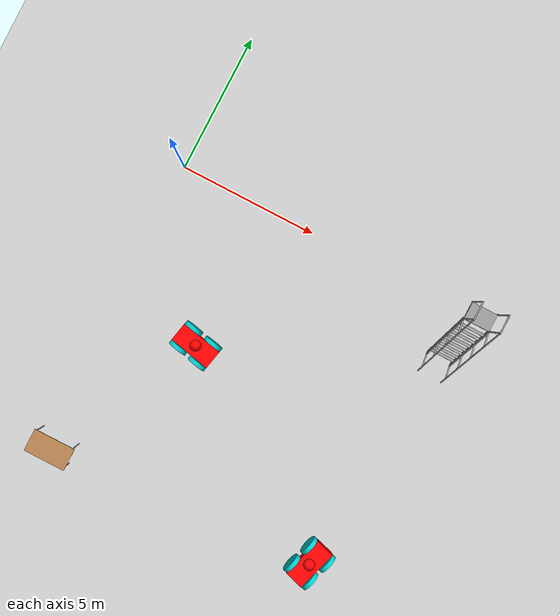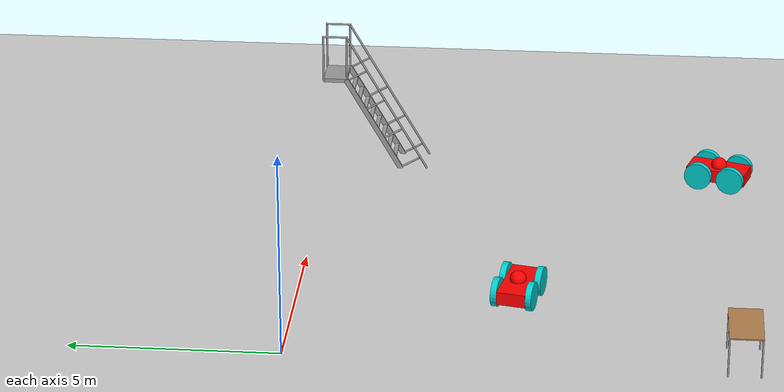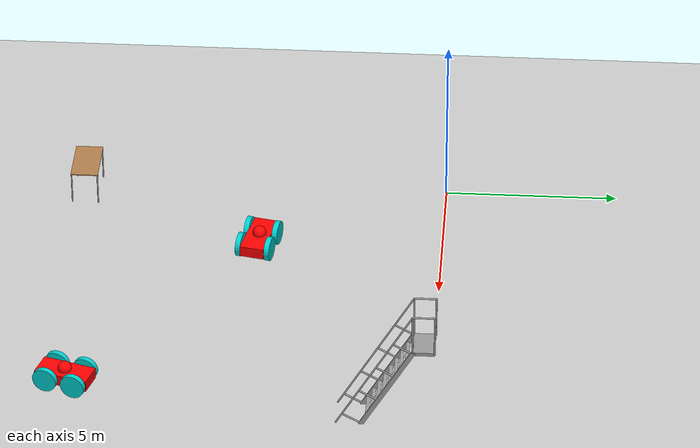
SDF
<sdf version="1.6">
 <world name="default">
  <model name="ground_plane">
   <static>1</static>
   <link name="link">
    <collision name="collision">
     <geometry><plane><normal>0 0 1</normal><size>100 100</size></plane></geometry>
     <surface>
      <contact><collide_bitmask>65535</collide_bitmask></contact>
      <friction><ode><mu>100</mu><mu2>50</mu2></ode></friction>
     </surface>
    </collision>
    <visual name="visual">
     <cast_shadows>0</cast_shadows>
     <geometry><plane><normal>0 0 1</normal><size>100 100</size></plane></geometry>
     <material>
      <script><uri>file://media/materials/scripts/gazebo.material</uri><name>Gazebo/Grey</name></script>
     </material>
    </visual>
   </link>
  </model>
  <model name="table_clone">
   <static>1</static>
   <link name="link">
    <collision name="surface">
     <pose>0 0 1 0 -0 0</pose>
     <geometry><box><size>1.5 0.8 0.03</size></box></geometry>
     <surface><friction><ode><mu>0.6</mu><mu2>0.6</mu2></ode></friction></surface>
    </collision>
    <visual name="visual1">
     <pose>0 0 1 0 -0 0</pose>
     <geometry><box><size>1.5 0.8 0.03</size></box></geometry>
     <material>
      <script><uri>file://media/materials/scripts/gazebo.material</uri><name>Gazebo/Wood</name></script>
     </material>
    </visual>
    <collision name="front_left_leg">
     <pose>0.68 0.38 0.5 0 -0 0</pose>
     <geometry><cylinder><radius>0.02</radius><length>1</length></cylinder></geometry>
    </collision>
    <visual name="front_left_leg">
     <pose>0.68 0.38 0.5 0 -0 0</pose>
     <geometry><cylinder><radius>0.02</radius><length>1</length></cylinder></geometry>
     <material>
      <script><uri>file://media/materials/scripts/gazebo.material</uri><name>Gazebo/Grey</name></script>
     </material>
    </visual>
    <collision name="front_right_leg">
     <pose>0.68 -0.38 0.5 0 -0 0</pose>
     <geometry><cylinder><radius>0.02</radius><length>1</length></cylinder></geometry>
    </collision>
    <visual name="front_right_leg">
     <pose>0.68 -0.38 0.5 0 -0 0</pose>
     <geometry><cylinder><radius>0.02</radius><length>1</length></cylinder></geometry>
     <material>
      <script><uri>file://media/materials/scripts/gazebo.material</uri><name>Gazebo/Grey</name></script>
     </material>
    </visual>
    <collision name="back_right_leg">
     <pose>-0.68 -0.38 0.5 0 -0 0</pose>
     <geometry><cylinder><radius>0.02</radius><length>1</length></cylinder></geometry>
    </collision>
    <visual name="back_right_leg">
     <pose>-0.68 -0.38 0.5 0 -0 0</pose>
     <geometry><cylinder><radius>0.02</radius><length>1</length></cylinder></geometry>
     <material>
      <script><uri>file://media/materials/scripts/gazebo.material</uri><name>Gazebo/Grey</name></script>
     </material>
    </visual>
    <collision name="back_left_leg">
     <pose>-0.68 0.38 0.5 0 -0 0</pose>
     <geometry><cylinder><radius>0.02</radius><length>1</length></cylinder></geometry>
    </collision>
    <visual name="back_left_leg">
     <pose>-0.68 0.38 0.5 0 -0 0</pose>
     <geometry><cylinder><radius>0.02</radius><length>1</length></cylinder></geometry>
     <material>
      <script><uri>file://media/materials/scripts/gazebo.material</uri><name>Gazebo/Grey</name></script>
     </material>
    </visual>
   </link>
   <pose>0.466987 -10.585 0 0 -0 0</pose>
  </model>
  <model name="4wheeler">
   <link name="link_0">
    <inertial>
     <mass>1.35085</mass>
     <inertia>
      <ixx>0.277852</ixx>
      <ixy>0</ixy>
      <ixz>0</ixz>
      <iyy>0.0669791</iyy>
      <iyz>0</iyz>
      <izz>0.321192</izz>
     </inertia>
    </inertial>
    <pose>0.011609 -0.00021 0.4 0 -0 0</pose>
    <visual name="visual">
     <geometry><box><size>0.7 1.53729 0.324029</size></box></geometry>
     <material>
      <lighting>1</lighting>
      <script><uri>file://media/materials/scripts/gazebo.material</uri><name>Gazebo/Grey</name></script>
      <shader type="pixel"><normal_map>__default__</normal_map></shader>
      <ambient>1 0 0 1</ambient>
      <diffuse>0.7 0.7 0.7 1</diffuse>
      <specular>0.01 0.01 0.01 1</specular>
      <emissive>0 0 0 1</emissive>
     </material>
    </visual>
    <collision name="collision">
     <geometry><box><size>0.7 1.53729 0.324029</size></box></geometry>
     <surface>
      <friction>
       <ode><mu>1</mu><mu2>1</mu2><fdir1>0 0 0</fdir1><slip1>0</slip1><slip2>0</slip2></ode>
       <torsional>
        <coefficient>1</coefficient>
        <patch_radius>0</patch_radius>
        <surface_radius>0</surface_radius>
        <use_patch_radius>1</use_patch_radius>
        <ode><slip>0</slip></ode>
       </torsional>
      </friction>
      <bounce><restitution_coefficient>0</restitution_coefficient><threshold>1e+06</threshold></bounce>
      <contact>
       <collide_without_contact>0</collide_without_contact>
       <collide_without_contact_bitmask>1</collide_without_contact_bitmask>
       <collide_bitmask>1</collide_bitmask>
       <ode>
        <soft_cfm>0</soft_cfm>
        <soft_erp>0.2</soft_erp>
        <kp>1e+13</kp>
        <kd>1</kd>
        <max_vel>0.01</max_vel>
        <min_depth>0</min_depth>
       </ode>
       <bullet>
        <split_impulse>1</split_impulse>
        <split_impulse_penetration_threshold>-0.01</split_impulse_penetration_threshold>
        <soft_cfm>0</soft_cfm>
        <soft_erp>0.2</soft_erp>
        <kp>1e+13</kp>
        <kd>1</kd>
       </bullet>
      </contact>
     </surface>
    </collision>
   </link>
   <link name="link_1_clone">
    <inertial>
     <mass>1</mass>
     <inertia><ixx>0.145833</ixx><ixy>0</ixy><ixz>0</ixz><iyy>0.145833</iyy><iyz>0</iyz><izz>0.125</izz></inertia>
    </inertial>
    <pose>0.44037 0.416058 0.4 1.5707 0 1.5707</pose>
    <visual name="visual">
     <geometry><cylinder><radius>0.35</radius><length>0.15</length></cylinder></geometry>
     <material>
      <lighting>1</lighting>
      <script><uri>file://media/materials/scripts/gazebo.material</uri><name>Gazebo/Grey</name></script>
      <shader type="pixel"><normal_map>__default__</normal_map></shader>
      <ambient>0 0.8 0.8 1</ambient>
      <diffuse>0.7 0.7 0.7 1</diffuse>
      <specular>0.01 0.01 0.01 1</specular>
      <emissive>0 0 0 1</emissive>
     </material>
    </visual>
    <collision name="collision">
     <geometry><cylinder><radius>0.35</radius><length>0.15</length></cylinder></geometry>
     <surface>
      <friction>
       <ode><mu>1</mu><mu2>1</mu2><fdir1>0 0 0</fdir1><slip1>0</slip1><slip2>0</slip2></ode>
       <torsional>
        <coefficient>1</coefficient>
        <patch_radius>0</patch_radius>
        <surface_radius>0</surface_radius>
        <use_patch_radius>1</use_patch_radius>
        <ode><slip>0</slip></ode>
       </torsional>
      </friction>
      <bounce><restitution_coefficient>0</restitution_coefficient><threshold>1e+06</threshold></bounce>
      <contact>
       <collide_without_contact>0</collide_without_contact>
       <collide_without_contact_bitmask>1</collide_without_contact_bitmask>
       <collide_bitmask>1</collide_bitmask>
       <ode>
        <soft_cfm>0</soft_cfm>
        <soft_erp>0.2</soft_erp>
        <kp>1e+13</kp>
        <kd>1</kd>
        <max_vel>0.01</max_vel>
        <min_depth>0</min_depth>
       </ode>
       <bullet>
        <split_impulse>1</split_impulse>
        <split_impulse_penetration_threshold>-0.01</split_impulse_penetration_threshold>
        <soft_cfm>0</soft_cfm>
        <soft_erp>0.2</soft_erp>
        <kp>1e+13</kp>
        <kd>1</kd>
       </bullet>
      </contact>
     </surface>
    </collision>
   </link>
   <link name="link_1_clone_clone">
    <inertial>
     <mass>1</mass>
     <inertia><ixx>0.145833</ixx><ixy>0</ixy><ixz>0</ixz><iyy>0.145833</iyy><iyz>0</iyz><izz>0.125</izz></inertia>
    </inertial>
    <pose>0.431165 -0.424592 0.4 1.5707 0 1.5707</pose>
    <visual name="visual">
     <geometry><cylinder><radius>0.35</radius><length>0.15</length></cylinder></geometry>
     <material>
      <lighting>1</lighting>
      <script><uri>file://media/materials/scripts/gazebo.material</uri><name>Gazebo/Grey</name></script>
      <shader type="pixel"><normal_map>__default__</normal_map></shader>
      <ambient>0 0.8 0.8 1</ambient>
      <diffuse>0.7 0.7 0.7 1</diffuse>
      <specular>0.01 0.01 0.01 1</specular>
      <emissive>0 0 0 1</emissive>
     </material>
    </visual>
    <collision name="collision">
     <geometry><cylinder><radius>0.35</radius><length>0.15</length></cylinder></geometry>
     <surface>
      <friction>
       <ode><mu>1</mu><mu2>1</mu2><fdir1>0 0 0</fdir1><slip1>0</slip1><slip2>0</slip2></ode>
       <torsional>
        <coefficient>1</coefficient>
        <patch_radius>0</patch_radius>
        <surface_radius>0</surface_radius>
        <use_patch_radius>1</use_patch_radius>
        <ode><slip>0</slip></ode>
       </torsional>
      </friction>
      <bounce><restitution_coefficient>0</restitution_coefficient><threshold>1e+06</threshold></bounce>
      <contact>
       <collide_without_contact>0</collide_without_contact>
       <collide_without_contact_bitmask>1</collide_without_contact_bitmask>
       <collide_bitmask>1</collide_bitmask>
       <ode>
        <soft_cfm>0</soft_cfm>
        <soft_erp>0.2</soft_erp>
        <kp>1e+13</kp>
        <kd>1</kd>
        <max_vel>0.01</max_vel>
        <min_depth>0</min_depth>
       </ode>
       <bullet>
        <split_impulse>1</split_impulse>
        <split_impulse_penetration_threshold>-0.01</split_impulse_penetration_threshold>
        <soft_cfm>0</soft_cfm>
        <soft_erp>0.2</soft_erp>
        <kp>1e+13</kp>
        <kd>1</kd>
       </bullet>
      </contact>
     </surface>
    </collision>
   </link>
   <link name="link_1_clone_clone_0">
    <inertial>
     <mass>1</mass>
     <inertia><ixx>0.145833</ixx><ixy>0</ixy><ixz>0</ixz><iyy>0.145833</iyy><iyz>0</iyz><izz>0.125</izz></inertia>
    </inertial>
    <pose>-0.421453 0.42237 0.4 1.5707 0 1.5707</pose>
    <visual name="visual">
     <geometry><cylinder><radius>0.35</radius><length>0.15</length></cylinder></geometry>
     <material>
      <lighting>1</lighting>
      <script><uri>file://media/materials/scripts/gazebo.material</uri><name>Gazebo/Grey</name></script>
      <shader type="pixel"><normal_map>__default__</normal_map></shader>
      <ambient>0 0.8 0.8 1</ambient>
      <diffuse>0.7 0.7 0.7 1</diffuse>
      <specular>0.01 0.01 0.01 1</specular>
      <emissive>0 0 0 1</emissive>
     </material>
    </visual>
    <collision name="collision">
     <geometry><cylinder><radius>0.35</radius><length>0.15</length></cylinder></geometry>
     <surface>
      <friction>
       <ode><mu>1</mu><mu2>1</mu2><fdir1>0 0 0</fdir1><slip1>0</slip1><slip2>0</slip2></ode>
       <torsional>
        <coefficient>1</coefficient>
        <patch_radius>0</patch_radius>
        <surface_radius>0</surface_radius>
        <use_patch_radius>1</use_patch_radius>
        <ode><slip>0</slip></ode>
       </torsional>
      </friction>
      <bounce><restitution_coefficient>0</restitution_coefficient><threshold>1e+06</threshold></bounce>
      <contact>
       <collide_without_contact>0</collide_without_contact>
       <collide_without_contact_bitmask>1</collide_without_contact_bitmask>
       <collide_bitmask>1</collide_bitmask>
       <ode>
        <soft_cfm>0</soft_cfm>
        <soft_erp>0.2</soft_erp>
        <kp>1e+13</kp>
        <kd>1</kd>
        <max_vel>0.01</max_vel>
        <min_depth>0</min_depth>
       </ode>
       <bullet>
        <split_impulse>1</split_impulse>
        <split_impulse_penetration_threshold>-0.01</split_impulse_penetration_threshold>
        <soft_cfm>0</soft_cfm>
        <soft_erp>0.2</soft_erp>
        <kp>1e+13</kp>
        <kd>1</kd>
       </bullet>
      </contact>
     </surface>
    </collision>
   </link>
   <link name="link_1_clone_clone_clone">
    <inertial>
     <mass>1</mass>
     <inertia><ixx>0.145833</ixx><ixy>0</ixy><ixz>0</ixz><iyy>0.145833</iyy><iyz>0</iyz><izz>0.125</izz></inertia>
    </inertial>
    <pose>-0.415948 -0.421035 0.4 1.5707 0 1.5707</pose>
    <visual name="visual">
     <geometry><cylinder><radius>0.35</radius><length>0.15</length></cylinder></geometry>
     <material>
      <lighting>1</lighting>
      <script><uri>file://media/materials/scripts/gazebo.material</uri><name>Gazebo/Grey</name></script>
      <shader type="pixel"><normal_map>__default__</normal_map></shader>
      <ambient>0 0.8 0.8 1</ambient>
      <diffuse>0.7 0.7 0.7 1</diffuse>
      <specular>0.01 0.01 0.01 1</specular>
      <emissive>0 0 0 1</emissive>
     </material>
    </visual>
    <collision name="collision">
     <geometry><cylinder><radius>0.35</radius><length>0.15</length></cylinder></geometry>
     <surface>
      <friction>
       <ode><mu>1</mu><mu2>1</mu2><fdir1>0 0 0</fdir1><slip1>0</slip1><slip2>0</slip2></ode>
       <torsional>
        <coefficient>1</coefficient>
        <patch_radius>0</patch_radius>
        <surface_radius>0</surface_radius>
        <use_patch_radius>1</use_patch_radius>
        <ode><slip>0</slip></ode>
       </torsional>
      </friction>
      <bounce><restitution_coefficient>0</restitution_coefficient><threshold>1e+06</threshold></bounce>
      <contact>
       <collide_without_contact>0</collide_without_contact>
       <collide_without_contact_bitmask>1</collide_without_contact_bitmask>
       <collide_bitmask>1</collide_bitmask>
       <ode>
        <soft_cfm>0</soft_cfm>
        <soft_erp>0.2</soft_erp>
        <kp>1e+13</kp>
        <kd>1</kd>
        <max_vel>0.01</max_vel>
        <min_depth>0</min_depth>
       </ode>
       <bullet>
        <split_impulse>1</split_impulse>
        <split_impulse_penetration_threshold>-0.01</split_impulse_penetration_threshold>
        <soft_cfm>0</soft_cfm>
        <soft_erp>0.2</soft_erp>
        <kp>1e+13</kp>
        <kd>1</kd>
       </bullet>
      </contact>
     </surface>
    </collision>
   </link>
   <link name="link_5">
    <inertial>
     <mass>1</mass>
     <inertia><ixx>0.1</ixx><ixy>0</ixy><ixz>0</ixz><iyy>0.1</iyy><iyz>0</iyz><izz>0.1</izz></inertia>
    </inertial>
    <pose>-0.001788 -0.009431 0.6 0 -0 0</pose>
    <visual name="visual">
     <geometry><sphere><radius>0.2</radius></sphere></geometry>
     <material>
      <lighting>1</lighting>
      <script><uri>file://media/materials/scripts/gazebo.material</uri><name>Gazebo/Grey</name></script>
      <shader type="pixel"><normal_map>__default__</normal_map></shader>
      <ambient>1 0 0 1</ambient>
      <diffuse>0.7 0.7 0.7 1</diffuse>
      <specular>0.01 0.01 0.01 1</specular>
      <emissive>0 0 0 1</emissive>
     </material>
    </visual>
    <collision name="collision">
     <geometry><sphere><radius>0.2</radius></sphere></geometry>
     <surface>
      <friction>
       <ode><mu>1</mu><mu2>1</mu2><fdir1>0 0 0</fdir1><slip1>0</slip1><slip2>0</slip2></ode>
       <torsional>
        <coefficient>1</coefficient>
        <patch_radius>0</patch_radius>
        <surface_radius>0</surface_radius>
        <use_patch_radius>1</use_patch_radius>
        <ode><slip>0</slip></ode>
       </torsional>
      </friction>
      <bounce><restitution_coefficient>0</restitution_coefficient><threshold>1e+06</threshold></bounce>
      <contact>
       <collide_without_contact>0</collide_without_contact>
       <collide_without_contact_bitmask>1</collide_without_contact_bitmask>
       <collide_bitmask>1</collide_bitmask>
       <ode>
        <soft_cfm>0</soft_cfm>
        <soft_erp>0.2</soft_erp>
        <kp>1e+13</kp>
        <kd>1</kd>
        <max_vel>0.01</max_vel>
        <min_depth>0</min_depth>
       </ode>
       <bullet>
        <split_impulse>1</split_impulse>
        <split_impulse_penetration_threshold>-0.01</split_impulse_penetration_threshold>
        <soft_cfm>0</soft_cfm>
        <soft_erp>0.2</soft_erp>
        <kp>1e+13</kp>
        <kd>1</kd>
       </bullet>
      </contact>
     </surface>
    </collision>
   </link>
   <joint name="link_0_JOINT_0" type="revolute">
    <parent>link_0</parent>
    <child>link_1_clone</child>
    <axis>
     <xyz>0 0 1</xyz>
     <use_parent_model_frame>0</use_parent_model_frame>
     <limit>
      <lower>-1.79769e+308</lower>
      <upper>1.79769e+308</upper>
      <effort>-1</effort>
      <velocity>-1</velocity>
     </limit>
     <dynamics>
      <spring_reference>0</spring_reference>
      <spring_stiffness>0</spring_stiffness>
      <damping>0</damping>
      <friction>0</friction>
     </dynamics>
    </axis>
    <physics>
     <ode><limit><cfm>0</cfm><erp>0.2</erp></limit><suspension><cfm>0</cfm><erp>0.2</erp></suspension></ode>
    </physics>
   </joint>
   <joint name="link_0_JOINT_1" type="revolute">
    <parent>link_0</parent>
    <child>link_1_clone_clone</child>
    <axis>
     <xyz>0 0 1</xyz>
     <use_parent_model_frame>0</use_parent_model_frame>
     <limit>
      <lower>-1.79769e+308</lower>
      <upper>1.79769e+308</upper>
      <effort>-1</effort>
      <velocity>-1</velocity>
     </limit>
     <dynamics>
      <spring_reference>0</spring_reference>
      <spring_stiffness>0</spring_stiffness>
      <damping>0</damping>
      <friction>0</friction>
     </dynamics>
    </axis>
    <physics>
     <ode><limit><cfm>0</cfm><erp>0.2</erp></limit><suspension><cfm>0</cfm><erp>0.2</erp></suspension></ode>
    </physics>
   </joint>
   <joint name="link_0_JOINT_2" type="revolute">
    <parent>link_0</parent>
    <child>link_1_clone_clone_clone</child>
    <axis>
     <xyz>0 0 1</xyz>
     <use_parent_model_frame>0</use_parent_model_frame>
     <limit>
      <lower>-1.79769e+308</lower>
      <upper>1.79769e+308</upper>
      <effort>-1</effort>
      <velocity>-1</velocity>
     </limit>
     <dynamics>
      <spring_reference>0</spring_reference>
      <spring_stiffness>0</spring_stiffness>
      <damping>0</damping>
      <friction>0</friction>
     </dynamics>
    </axis>
    <physics>
     <ode><limit><cfm>0</cfm><erp>0.2</erp></limit><suspension><cfm>0</cfm><erp>0.2</erp></suspension></ode>
    </physics>
   </joint>
   <joint name="link_0_JOINT_3" type="revolute">
    <parent>link_0</parent>
    <child>link_1_clone_clone_0</child>
    <axis>
     <xyz>1 0 0</xyz>
     <use_parent_model_frame>0</use_parent_model_frame>
     <limit>
      <lower>-1.79769e+308</lower>
      <upper>1.79769e+308</upper>
      <effort>-1</effort>
      <velocity>-1</velocity>
     </limit>
     <dynamics>
      <spring_reference>0</spring_reference>
      <spring_stiffness>0</spring_stiffness>
      <damping>0</damping>
      <friction>0</friction>
     </dynamics>
    </axis>
    <physics>
     <ode><limit><cfm>0</cfm><erp>0.2</erp></limit><suspension><cfm>0</cfm><erp>0.2</erp></suspension></ode>
    </physics>
   </joint>
   <joint name="link_0_JOINT_4" type="fixed">
    <parent>link_0</parent>
    <child>link_5</child>
    <physics>
     <ode><limit><cfm>0</cfm><erp>0.2</erp></limit><suspension><cfm>0</cfm><erp>0.2</erp></suspension></ode>
    </physics>
   </joint>
   <static>0</static>
   <pose>3.1932 -5.27849 -0.049997 -1e-05 -1e-06 -1.77843</pose>
  </model>
  <model name="4wheeler_0">
   <link name="link_0">
    <inertial>
     <mass>1.35085</mass>
     <inertia>
      <ixx>0.277852</ixx>
      <ixy>0</ixy>
      <ixz>0</ixz>
      <iyy>0.0669791</iyy>
      <iyz>0</iyz>
      <izz>0.321192</izz>
     </inertia>
    </inertial>
    <pose>0.011609 -0.00021 0.4 0 -0 0</pose>
    <visual name="visual">
     <geometry><box><size>0.7 1.53729 0.324029</size></box></geometry>
     <material>
      <lighting>1</lighting>
      <script><uri>file://media/materials/scripts/gazebo.material</uri><name>Gazebo/Grey</name></script>
      <shader type="pixel"><normal_map>__default__</normal_map></shader>
      <ambient>1 0 0 1</ambient>
      <diffuse>0.7 0.7 0.7 1</diffuse>
      <specular>0.01 0.01 0.01 1</specular>
      <emissive>0 0 0 1</emissive>
     </material>
    </visual>
    <collision name="collision">
     <geometry><box><size>0.7 1.53729 0.324029</size></box></geometry>
     <surface>
      <friction>
       <ode><mu>1</mu><mu2>1</mu2><fdir1>0 0 0</fdir1><slip1>0</slip1><slip2>0</slip2></ode>
       <torsional>
        <coefficient>1</coefficient>
        <patch_radius>0</patch_radius>
        <surface_radius>0</surface_radius>
        <use_patch_radius>1</use_patch_radius>
        <ode><slip>0</slip></ode>
       </torsional>
      </friction>
      <bounce><restitution_coefficient>0</restitution_coefficient><threshold>1e+06</threshold></bounce>
      <contact>
       <collide_without_contact>0</collide_without_contact>
       <collide_without_contact_bitmask>1</collide_without_contact_bitmask>
       <collide_bitmask>1</collide_bitmask>
       <ode>
        <soft_cfm>0</soft_cfm>
        <soft_erp>0.2</soft_erp>
        <kp>1e+13</kp>
        <kd>1</kd>
        <max_vel>0.01</max_vel>
        <min_depth>0</min_depth>
       </ode>
       <bullet>
        <split_impulse>1</split_impulse>
        <split_impulse_penetration_threshold>-0.01</split_impulse_penetration_threshold>
        <soft_cfm>0</soft_cfm>
        <soft_erp>0.2</soft_erp>
        <kp>1e+13</kp>
        <kd>1</kd>
       </bullet>
      </contact>
     </surface>
    </collision>
   </link>
   <link name="link_1_clone">
    <inertial>
     <mass>1</mass>
     <inertia><ixx>0.145833</ixx><ixy>0</ixy><ixz>0</ixz><iyy>0.145833</iyy><iyz>0</iyz><izz>0.125</izz></inertia>
    </inertial>
    <pose>0.44037 0.416058 0.4 1.5707 0 1.5707</pose>
    <visual name="visual">
     <geometry><cylinder><radius>0.35</radius><length>0.15</length></cylinder></geometry>
     <material>
      <lighting>1</lighting>
      <script><uri>file://media/materials/scripts/gazebo.material</uri><name>Gazebo/Grey</name></script>
      <shader type="pixel"><normal_map>__default__</normal_map></shader>
      <ambient>0 0.8 0.8 1</ambient>
      <diffuse>0.7 0.7 0.7 1</diffuse>
      <specular>0.01 0.01 0.01 1</specular>
      <emissive>0 0 0 1</emissive>
     </material>
    </visual>
    <collision name="collision">
     <geometry><cylinder><radius>0.35</radius><length>0.15</length></cylinder></geometry>
     <surface>
      <friction>
       <ode><mu>1</mu><mu2>1</mu2><fdir1>0 0 0</fdir1><slip1>0</slip1><slip2>0</slip2></ode>
       <torsional>
        <coefficient>1</coefficient>
        <patch_radius>0</patch_radius>
        <surface_radius>0</surface_radius>
        <use_patch_radius>1</use_patch_radius>
        <ode><slip>0</slip></ode>
       </torsional>
      </friction>
      <bounce><restitution_coefficient>0</restitution_coefficient><threshold>1e+06</threshold></bounce>
      <contact>
       <collide_without_contact>0</collide_without_contact>
       <collide_without_contact_bitmask>1</collide_without_contact_bitmask>
       <collide_bitmask>1</collide_bitmask>
       <ode>
        <soft_cfm>0</soft_cfm>
        <soft_erp>0.2</soft_erp>
        <kp>1e+13</kp>
        <kd>1</kd>
        <max_vel>0.01</max_vel>
        <min_depth>0</min_depth>
       </ode>
       <bullet>
        <split_impulse>1</split_impulse>
        <split_impulse_penetration_threshold>-0.01</split_impulse_penetration_threshold>
        <soft_cfm>0</soft_cfm>
        <soft_erp>0.2</soft_erp>
        <kp>1e+13</kp>
        <kd>1</kd>
       </bullet>
      </contact>
     </surface>
    </collision>
   </link>
   <link name="link_1_clone_clone">
    <inertial>
     <mass>1</mass>
     <inertia><ixx>0.145833</ixx><ixy>0</ixy><ixz>0</ixz><iyy>0.145833</iyy><iyz>0</iyz><izz>0.125</izz></inertia>
    </inertial>
    <pose>0.431165 -0.424592 0.4 1.5707 0 1.5707</pose>
    <visual name="visual">
     <geometry><cylinder><radius>0.35</radius><length>0.15</length></cylinder></geometry>
     <material>
      <lighting>1</lighting>
      <script><uri>file://media/materials/scripts/gazebo.material</uri><name>Gazebo/Grey</name></script>
      <shader type="pixel"><normal_map>__default__</normal_map></shader>
      <ambient>0 0.8 0.8 1</ambient>
      <diffuse>0.7 0.7 0.7 1</diffuse>
      <specular>0.01 0.01 0.01 1</specular>
      <emissive>0 0 0 1</emissive>
     </material>
    </visual>
    <collision name="collision">
     <geometry><cylinder><radius>0.35</radius><length>0.15</length></cylinder></geometry>
     <surface>
      <friction>
       <ode><mu>1</mu><mu2>1</mu2><fdir1>0 0 0</fdir1><slip1>0</slip1><slip2>0</slip2></ode>
       <torsional>
        <coefficient>1</coefficient>
        <patch_radius>0</patch_radius>
        <surface_radius>0</surface_radius>
        <use_patch_radius>1</use_patch_radius>
        <ode><slip>0</slip></ode>
       </torsional>
      </friction>
      <bounce><restitution_coefficient>0</restitution_coefficient><threshold>1e+06</threshold></bounce>
      <contact>
       <collide_without_contact>0</collide_without_contact>
       <collide_without_contact_bitmask>1</collide_without_contact_bitmask>
       <collide_bitmask>1</collide_bitmask>
       <ode>
        <soft_cfm>0</soft_cfm>
        <soft_erp>0.2</soft_erp>
        <kp>1e+13</kp>
        <kd>1</kd>
        <max_vel>0.01</max_vel>
        <min_depth>0</min_depth>
       </ode>
       <bullet>
        <split_impulse>1</split_impulse>
        <split_impulse_penetration_threshold>-0.01</split_impulse_penetration_threshold>
        <soft_cfm>0</soft_cfm>
        <soft_erp>0.2</soft_erp>
        <kp>1e+13</kp>
        <kd>1</kd>
       </bullet>
      </contact>
     </surface>
    </collision>
   </link>
   <link name="link_1_clone_clone_0">
    <inertial>
     <mass>1</mass>
     <inertia><ixx>0.145833</ixx><ixy>0</ixy><ixz>0</ixz><iyy>0.145833</iyy><iyz>0</iyz><izz>0.125</izz></inertia>
    </inertial>
    <pose>-0.421453 0.42237 0.4 1.5707 0 1.5707</pose>
    <visual name="visual">
     <geometry><cylinder><radius>0.35</radius><length>0.15</length></cylinder></geometry>
     <material>
      <lighting>1</lighting>
      <script><uri>file://media/materials/scripts/gazebo.material</uri><name>Gazebo/Grey</name></script>
      <shader type="pixel"><normal_map>__default__</normal_map></shader>
      <ambient>0 0.8 0.8 1</ambient>
      <diffuse>0.7 0.7 0.7 1</diffuse>
      <specular>0.01 0.01 0.01 1</specular>
      <emissive>0 0 0 1</emissive>
     </material>
    </visual>
    <collision name="collision">
     <geometry><cylinder><radius>0.35</radius><length>0.15</length></cylinder></geometry>
     <surface>
      <friction>
       <ode><mu>1</mu><mu2>1</mu2><fdir1>0 0 0</fdir1><slip1>0</slip1><slip2>0</slip2></ode>
       <torsional>
        <coefficient>1</coefficient>
        <patch_radius>0</patch_radius>
        <surface_radius>0</surface_radius>
        <use_patch_radius>1</use_patch_radius>
        <ode><slip>0</slip></ode>
       </torsional>
      </friction>
      <bounce><restitution_coefficient>0</restitution_coefficient><threshold>1e+06</threshold></bounce>
      <contact>
       <collide_without_contact>0</collide_without_contact>
       <collide_without_contact_bitmask>1</collide_without_contact_bitmask>
       <collide_bitmask>1</collide_bitmask>
       <ode>
        <soft_cfm>0</soft_cfm>
        <soft_erp>0.2</soft_erp>
        <kp>1e+13</kp>
        <kd>1</kd>
        <max_vel>0.01</max_vel>
        <min_depth>0</min_depth>
       </ode>
       <bullet>
        <split_impulse>1</split_impulse>
        <split_impulse_penetration_threshold>-0.01</split_impulse_penetration_threshold>
        <soft_cfm>0</soft_cfm>
        <soft_erp>0.2</soft_erp>
        <kp>1e+13</kp>
        <kd>1</kd>
       </bullet>
      </contact>
     </surface>
    </collision>
   </link>
   <link name="link_1_clone_clone_clone">
    <inertial>
     <mass>1</mass>
     <inertia><ixx>0.145833</ixx><ixy>0</ixy><ixz>0</ixz><iyy>0.145833</iyy><iyz>0</iyz><izz>0.125</izz></inertia>
    </inertial>
    <pose>-0.415948 -0.421035 0.4 1.5707 0 1.5707</pose>
    <visual name="visual">
     <geometry><cylinder><radius>0.35</radius><length>0.15</length></cylinder></geometry>
     <material>
      <lighting>1</lighting>
      <script><uri>file://media/materials/scripts/gazebo.material</uri><name>Gazebo/Grey</name></script>
      <shader type="pixel"><normal_map>__default__</normal_map></shader>
      <ambient>0 0.8 0.8 1</ambient>
      <diffuse>0.7 0.7 0.7 1</diffuse>
      <specular>0.01 0.01 0.01 1</specular>
      <emissive>0 0 0 1</emissive>
     </material>
    </visual>
    <collision name="collision">
     <geometry><cylinder><radius>0.35</radius><length>0.15</length></cylinder></geometry>
     <surface>
      <friction>
       <ode><mu>1</mu><mu2>1</mu2><fdir1>0 0 0</fdir1><slip1>0</slip1><slip2>0</slip2></ode>
       <torsional>
        <coefficient>1</coefficient>
        <patch_radius>0</patch_radius>
        <surface_radius>0</surface_radius>
        <use_patch_radius>1</use_patch_radius>
        <ode><slip>0</slip></ode>
       </torsional>
      </friction>
      <bounce><restitution_coefficient>0</restitution_coefficient><threshold>1e+06</threshold></bounce>
      <contact>
       <collide_without_contact>0</collide_without_contact>
       <collide_without_contact_bitmask>1</collide_without_contact_bitmask>
       <collide_bitmask>1</collide_bitmask>
       <ode>
        <soft_cfm>0</soft_cfm>
        <soft_erp>0.2</soft_erp>
        <kp>1e+13</kp>
        <kd>1</kd>
        <max_vel>0.01</max_vel>
        <min_depth>0</min_depth>
       </ode>
       <bullet>
        <split_impulse>1</split_impulse>
        <split_impulse_penetration_threshold>-0.01</split_impulse_penetration_threshold>
        <soft_cfm>0</soft_cfm>
        <soft_erp>0.2</soft_erp>
        <kp>1e+13</kp>
        <kd>1</kd>
       </bullet>
      </contact>
     </surface>
    </collision>
   </link>
   <link name="link_5">
    <inertial>
     <mass>1</mass>
     <inertia><ixx>0.1</ixx><ixy>0</ixy><ixz>0</ixz><iyy>0.1</iyy><iyz>0</iyz><izz>0.1</izz></inertia>
    </inertial>
    <pose>-0.001788 -0.009431 0.6 0 -0 0</pose>
    <visual name="visual">
     <geometry><sphere><radius>0.2</radius></sphere></geometry>
     <material>
      <lighting>1</lighting>
      <script><uri>file://media/materials/scripts/gazebo.material</uri><name>Gazebo/Grey</name></script>
      <shader type="pixel"><normal_map>__default__</normal_map></shader>
      <ambient>1 0 0 1</ambient>
      <diffuse>0.7 0.7 0.7 1</diffuse>
      <specular>0.01 0.01 0.01 1</specular>
      <emissive>0 0 0 1</emissive>
     </material>
    </visual>
    <collision name="collision">
     <geometry><sphere><radius>0.2</radius></sphere></geometry>
     <surface>
      <friction>
       <ode><mu>1</mu><mu2>1</mu2><fdir1>0 0 0</fdir1><slip1>0</slip1><slip2>0</slip2></ode>
       <torsional>
        <coefficient>1</coefficient>
        <patch_radius>0</patch_radius>
        <surface_radius>0</surface_radius>
        <use_patch_radius>1</use_patch_radius>
        <ode><slip>0</slip></ode>
       </torsional>
      </friction>
      <bounce><restitution_coefficient>0</restitution_coefficient><threshold>1e+06</threshold></bounce>
      <contact>
       <collide_without_contact>0</collide_without_contact>
       <collide_without_contact_bitmask>1</collide_without_contact_bitmask>
       <collide_bitmask>1</collide_bitmask>
       <ode>
        <soft_cfm>0</soft_cfm>
        <soft_erp>0.2</soft_erp>
        <kp>1e+13</kp>
        <kd>1</kd>
        <max_vel>0.01</max_vel>
        <min_depth>0</min_depth>
       </ode>
       <bullet>
        <split_impulse>1</split_impulse>
        <split_impulse_penetration_threshold>-0.01</split_impulse_penetration_threshold>
        <soft_cfm>0</soft_cfm>
        <soft_erp>0.2</soft_erp>
        <kp>1e+13</kp>
        <kd>1</kd>
       </bullet>
      </contact>
     </surface>
    </collision>
   </link>
   <joint name="link_0_JOINT_0" type="revolute">
    <parent>link_0</parent>
    <child>link_1_clone</child>
    <axis>
     <xyz>0 0 1</xyz>
     <use_parent_model_frame>0</use_parent_model_frame>
     <limit>
      <lower>-1.79769e+308</lower>
      <upper>1.79769e+308</upper>
      <effort>-1</effort>
      <velocity>-1</velocity>
     </limit>
     <dynamics>
      <spring_reference>0</spring_reference>
      <spring_stiffness>0</spring_stiffness>
      <damping>0</damping>
      <friction>0</friction>
     </dynamics>
    </axis>
    <physics>
     <ode><limit><cfm>0</cfm><erp>0.2</erp></limit><suspension><cfm>0</cfm><erp>0.2</erp></suspension></ode>
    </physics>
   </joint>
   <joint name="link_0_JOINT_1" type="revolute">
    <parent>link_0</parent>
    <child>link_1_clone_clone</child>
    <axis>
     <xyz>0 0 1</xyz>
     <use_parent_model_frame>0</use_parent_model_frame>
     <limit>
      <lower>-1.79769e+308</lower>
      <upper>1.79769e+308</upper>
      <effort>-1</effort>
      <velocity>-1</velocity>
     </limit>
     <dynamics>
      <spring_reference>0</spring_reference>
      <spring_stiffness>0</spring_stiffness>
      <damping>0</damping>
      <friction>0</friction>
     </dynamics>
    </axis>
    <physics>
     <ode><limit><cfm>0</cfm><erp>0.2</erp></limit><suspension><cfm>0</cfm><erp>0.2</erp></suspension></ode>
    </physics>
   </joint>
   <joint name="link_0_JOINT_2" type="revolute">
    <parent>link_0</parent>
    <child>link_1_clone_clone_clone</child>
    <axis>
     <xyz>0 0 1</xyz>
     <use_parent_model_frame>0</use_parent_model_frame>
     <limit>
      <lower>-1.79769e+308</lower>
      <upper>1.79769e+308</upper>
      <effort>-1</effort>
      <velocity>-1</velocity>
     </limit>
     <dynamics>
      <spring_reference>0</spring_reference>
      <spring_stiffness>0</spring_stiffness>
      <damping>0</damping>
      <friction>0</friction>
     </dynamics>
    </axis>
    <physics>
     <ode><limit><cfm>0</cfm><erp>0.2</erp></limit><suspension><cfm>0</cfm><erp>0.2</erp></suspension></ode>
    </physics>
   </joint>
   <joint name="link_0_JOINT_3" type="revolute">
    <parent>link_0</parent>
    <child>link_1_clone_clone_0</child>
    <axis>
     <xyz>1 0 0</xyz>
     <use_parent_model_frame>0</use_parent_model_frame>
     <limit>
      <lower>-1.79769e+308</lower>
      <upper>1.79769e+308</upper>
      <effort>-1</effort>
      <velocity>-1</velocity>
     </limit>
     <dynamics>
      <spring_reference>0</spring_reference>
      <spring_stiffness>0</spring_stiffness>
      <damping>0</damping>
      <friction>0</friction>
     </dynamics>
    </axis>
    <physics>
     <ode><limit><cfm>0</cfm><erp>0.2</erp></limit><suspension><cfm>0</cfm><erp>0.2</erp></suspension></ode>
    </physics>
   </joint>
   <joint name="link_0_JOINT_4" type="fixed">
    <parent>link_0</parent>
    <child>link_5</child>
    <physics>
     <ode><limit><cfm>0</cfm><erp>0.2</erp></limit><suspension><cfm>0</cfm><erp>0.2</erp></suspension></ode>
    </physics>
   </joint>
   <static>0</static>
   <pose>10.0641 -10.1088 -0.049996 -2e-06 4e-06 -0.298948</pose>
  </model>
  <model name="ladder_60deg_2rails">
   <static>1</static>
   <link name="step0">
    <pose>0 0.15396 0.266667 0 -0 0</pose>
    <inertial>
     <mass>9.75482</mass>
     <inertia>
      <ixx>0.00957124</ixx>
      <iyy>0.65963</iyy>
      <izz>0.666842</izz>
      <ixy>0</ixy>
      <ixz>0</ixz>
      <iyz>0</iyz>
     </inertia>
    </inertial>
    <collision name="collision"><geometry><box><size>0.9 0.1016 0.0381</size></box></geometry></collision>
    <visual name="visual">
     <geometry><box><size>0.9 0.1016 0.0381</size></box></geometry>
     <material>
      <script><uri>file://media/materials/scripts/gazebo.material</uri><name>Gazebo/Grey</name></script>
     </material>
    </visual>
   </link>
   <link name="step1">
    <pose>0 0.30792 0.533333 0 -0 0</pose>
    <inertial>
     <mass>9.75482</mass>
     <inertia>
      <ixx>0.00957124</ixx>
      <iyy>0.65963</iyy>
      <izz>0.666842</izz>
      <ixy>0</ixy>
      <ixz>0</ixz>
      <iyz>0</iyz>
     </inertia>
    </inertial>
    <collision name="collision"><geometry><box><size>0.9 0.1016 0.0381</size></box></geometry></collision>
    <visual name="visual">
     <geometry><box><size>0.9 0.1016 0.0381</size></box></geometry>
     <material>
      <script><uri>file://media/materials/scripts/gazebo.material</uri><name>Gazebo/Grey</name></script>
     </material>
    </visual>
   </link>
   <link name="step2">
    <pose>0 0.46188 0.8 0 -0 0</pose>
    <inertial>
     <mass>9.75482</mass>
     <inertia>
      <ixx>0.00957124</ixx>
      <iyy>0.65963</iyy>
      <izz>0.666842</izz>
      <ixy>0</ixy>
      <ixz>0</ixz>
      <iyz>0</iyz>
     </inertia>
    </inertial>
    <collision name="collision"><geometry><box><size>0.9 0.1016 0.0381</size></box></geometry></collision>
    <visual name="visual">
     <geometry><box><size>0.9 0.1016 0.0381</size></box></geometry>
     <material>
      <script><uri>file://media/materials/scripts/gazebo.material</uri><name>Gazebo/Grey</name></script>
     </material>
    </visual>
   </link>
   <link name="step3">
    <pose>0 0.61584 1.06667 0 -0 0</pose>
    <inertial>
     <mass>9.75482</mass>
     <inertia>
      <ixx>0.00957124</ixx>
      <iyy>0.65963</iyy>
      <izz>0.666842</izz>
      <ixy>0</ixy>
      <ixz>0</ixz>
      <iyz>0</iyz>
     </inertia>
    </inertial>
    <collision name="collision"><geometry><box><size>0.9 0.1016 0.0381</size></box></geometry></collision>
    <visual name="visual">
     <geometry><box><size>0.9 0.1016 0.0381</size></box></geometry>
     <material>
      <script><uri>file://media/materials/scripts/gazebo.material</uri><name>Gazebo/Grey</name></script>
     </material>
    </visual>
   </link>
   <link name="step4">
    <pose>0 0.7698 1.33333 0 -0 0</pose>
    <inertial>
     <mass>9.75482</mass>
     <inertia>
      <ixx>0.00957124</ixx>
      <iyy>0.65963</iyy>
      <izz>0.666842</izz>
      <ixy>0</ixy>
      <ixz>0</ixz>
      <iyz>0</iyz>
     </inertia>
    </inertial>
    <collision name="collision"><geometry><box><size>0.9 0.1016 0.0381</size></box></geometry></collision>
    <visual name="visual">
     <geometry><box><size>0.9 0.1016 0.0381</size></box></geometry>
     <material>
      <script><uri>file://media/materials/scripts/gazebo.material</uri><name>Gazebo/Grey</name></script>
     </material>
    </visual>
   </link>
   <link name="step5">
    <pose>0 0.92376 1.6 0 -0 0</pose>
    <inertial>
     <mass>9.75482</mass>
     <inertia>
      <ixx>0.00957124</ixx>
      <iyy>0.65963</iyy>
      <izz>0.666842</izz>
      <ixy>0</ixy>
      <ixz>0</ixz>
      <iyz>0</iyz>
     </inertia>
    </inertial>
    <collision name="collision"><geometry><box><size>0.9 0.1016 0.0381</size></box></geometry></collision>
    <visual name="visual">
     <geometry><box><size>0.9 0.1016 0.0381</size></box></geometry>
     <material>
      <script><uri>file://media/materials/scripts/gazebo.material</uri><name>Gazebo/Grey</name></script>
     </material>
    </visual>
   </link>
   <link name="step6">
    <pose>0 1.07772 1.86667 0 -0 0</pose>
    <inertial>
     <mass>9.75482</mass>
     <inertia>
      <ixx>0.00957124</ixx>
      <iyy>0.65963</iyy>
      <izz>0.666842</izz>
      <ixy>0</ixy>
      <ixz>0</ixz>
      <iyz>0</iyz>
     </inertia>
    </inertial>
    <collision name="collision"><geometry><box><size>0.9 0.1016 0.0381</size></box></geometry></collision>
    <visual name="visual">
     <geometry><box><size>0.9 0.1016 0.0381</size></box></geometry>
     <material>
      <script><uri>file://media/materials/scripts/gazebo.material</uri><name>Gazebo/Grey</name></script>
     </material>
    </visual>
   </link>
   <link name="step7">
    <pose>0 1.23168 2.13333 0 -0 0</pose>
    <inertial>
     <mass>9.75482</mass>
     <inertia>
      <ixx>0.00957124</ixx>
      <iyy>0.65963</iyy>
      <izz>0.666842</izz>
      <ixy>0</ixy>
      <ixz>0</ixz>
      <iyz>0</iyz>
     </inertia>
    </inertial>
    <collision name="collision"><geometry><box><size>0.9 0.1016 0.0381</size></box></geometry></collision>
    <visual name="visual">
     <geometry><box><size>0.9 0.1016 0.0381</size></box></geometry>
     <material>
      <script><uri>file://media/materials/scripts/gazebo.material</uri><name>Gazebo/Grey</name></script>
     </material>
    </visual>
   </link>
   <link name="landing">
    <pose>0 1.68564 2.4 0 -0 0</pose>
    <inertial>
     <mass>57.6072</mass>
     <inertia><ixx>1.73518</ixx><iyy>3.89545</iyy><izz>5.6167</izz><ixy>0</ixy><ixz>0</ixz><iyz>0</iyz></inertia>
    </inertial>
    <collision name="collision"><geometry><box><size>0.9 0.6 0.1016</size></box></geometry></collision>
    <visual name="visual">
     <geometry><box><size>0.9 0.6 0.1016</size></box></geometry>
     <material>
      <script><uri>file://media/materials/scripts/gazebo.material</uri><name>Gazebo/Grey</name></script>
     </material>
    </visual>
   </link>
   <link name="left_side_wall">
    <pose>-0.45 0.69282 1.2 1.0472 -0 0</pose>
    <collision name="collision"><geometry><box><size>0.0508 2.85128 0.13</size></box></geometry></collision>
    <visual name="visual">
     <geometry><box><size>0.0508 2.85128 0.13</size></box></geometry>
     <material>
      <script><uri>file://media/materials/scripts/gazebo.material</uri><name>Gazebo/Grey</name></script>
     </material>
    </visual>
   </link>
   <link name="right_side_wall">
    <pose>0.45 0.69282 1.2 1.0472 -0 0</pose>
    <collision name="collision"><geometry><box><size>0.0508 2.85128 0.13</size></box></geometry></collision>
    <visual name="visual">
     <geometry><box><size>0.0508 2.85128 0.13</size></box></geometry>
     <material>
      <script><uri>file://media/materials/scripts/gazebo.material</uri><name>Gazebo/Grey</name></script>
     </material>
    </visual>
   </link>
   <link name="left_railing_long">
    <pose>-0.45 0.34282 1.80622 -0.523599 0 0</pose>
    <collision name="collision">
     <geometry><cylinder><radius>0.02413</radius><length>4.17128</length></cylinder></geometry>
    </collision>
    <visual name="visual">
     <geometry><cylinder><radius>0.02413</radius><length>4.17128</length></cylinder></geometry>
     <material>
      <script><uri>file://media/materials/scripts/gazebo.material</uri><name>Gazebo/Grey</name></script>
     </material>
    </visual>
   </link>
   <link name="left_railing_upright0">
    <pose>-0.45 -0.274963 0.15875 1.0472 -0 0</pose>
    <collision name="collision">
     <geometry><cylinder><radius>0.02413</radius><length>0.541218</length></cylinder></geometry>
    </collision>
    <visual name="visual">
     <geometry><cylinder><radius>0.02413</radius><length>0.541218</length></cylinder></geometry>
     <material>
      <script><uri>file://media/materials/scripts/gazebo.material</uri><name>Gazebo/Grey</name></script>
     </material>
    </visual>
   </link>
   <link name="left_railing_upright1">
    <pose>-0.45 0.186917 0.95875 1.0472 -0 0</pose>
    <collision name="collision">
     <geometry><cylinder><radius>0.02413</radius><length>0.541218</length></cylinder></geometry>
    </collision>
    <visual name="visual">
     <geometry><cylinder><radius>0.02413</radius><length>0.541218</length></cylinder></geometry>
     <material>
      <script><uri>file://media/materials/scripts/gazebo.material</uri><name>Gazebo/Grey</name></script>
     </material>
    </visual>
   </link>
   <link name="left_railing_upright2">
    <pose>-0.45 0.648797 1.75875 1.0472 -0 0</pose>
    <collision name="collision">
     <geometry><cylinder><radius>0.02413</radius><length>0.541218</length></cylinder></geometry>
    </collision>
    <visual name="visual">
     <geometry><cylinder><radius>0.02413</radius><length>0.541218</length></cylinder></geometry>
     <material>
      <script><uri>file://media/materials/scripts/gazebo.material</uri><name>Gazebo/Grey</name></script>
     </material>
    </visual>
   </link>
   <link name="left_railing_upright3">
    <pose>-0.45 1.11068 2.55875 1.0472 -0 0</pose>
    <collision name="collision">
     <geometry><cylinder><radius>0.02413</radius><length>0.541218</length></cylinder></geometry>
    </collision>
    <visual name="visual">
     <geometry><cylinder><radius>0.02413</radius><length>0.541218</length></cylinder></geometry>
     <material>
      <script><uri>file://media/materials/scripts/gazebo.material</uri><name>Gazebo/Grey</name></script>
     </material>
    </visual>
   </link>
   <link name="left_railing_landing_top">
    <pose>-0.45 1.68564 3.61244 1.5708 -0 0</pose>
    <collision name="collision">
     <geometry><cylinder><radius>0.02413</radius><length>0.64826</length></cylinder></geometry>
    </collision>
    <visual name="visual">
     <geometry><cylinder><radius>0.02413</radius><length>0.64826</length></cylinder></geometry>
     <material>
      <script><uri>file://media/materials/scripts/gazebo.material</uri><name>Gazebo/Grey</name></script>
     </material>
    </visual>
   </link>
   <link name="left_railing_landing_upright_0">
    <pose>-0.45 1.38564 3.00622 0 -0 0</pose>
    <collision name="collision">
     <geometry><cylinder><radius>0.02413</radius><length>1.21244</length></cylinder></geometry>
    </collision>
    <visual name="visual">
     <geometry><cylinder><radius>0.02413</radius><length>1.21244</length></cylinder></geometry>
     <material>
      <script><uri>file://media/materials/scripts/gazebo.material</uri><name>Gazebo/Grey</name></script>
     </material>
    </visual>
   </link>
   <link name="left_railing_landing_upright_1">
    <pose>-0.45 1.98564 3.00622 0 -0 0</pose>
    <collision name="collision">
     <geometry><cylinder><radius>0.02413</radius><length>1.21244</length></cylinder></geometry>
    </collision>
    <visual name="visual">
     <geometry><cylinder><radius>0.02413</radius><length>1.21244</length></cylinder></geometry>
     <material>
      <script><uri>file://media/materials/scripts/gazebo.material</uri><name>Gazebo/Grey</name></script>
     </material>
    </visual>
   </link>
   <link name="right_railing_long">
    <pose>0.45 0.34282 1.80622 -0.523599 0 0</pose>
    <collision name="collision">
     <geometry><cylinder><radius>0.02413</radius><length>4.17128</length></cylinder></geometry>
    </collision>
    <visual name="visual">
     <geometry><cylinder><radius>0.02413</radius><length>4.17128</length></cylinder></geometry>
     <material>
      <script><uri>file://media/materials/scripts/gazebo.material</uri><name>Gazebo/Grey</name></script>
     </material>
    </visual>
   </link>
   <link name="right_railing_upright0">
    <pose>0.45 -0.274963 0.15875 1.0472 -0 0</pose>
    <collision name="collision">
     <geometry><cylinder><radius>0.02413</radius><length>0.541218</length></cylinder></geometry>
    </collision>
    <visual name="visual">
     <geometry><cylinder><radius>0.02413</radius><length>0.541218</length></cylinder></geometry>
     <material>
      <script><uri>file://media/materials/scripts/gazebo.material</uri><name>Gazebo/Grey</name></script>
     </material>
    </visual>
   </link>
   <link name="right_railing_upright1">
    <pose>0.45 0.186917 0.95875 1.0472 -0 0</pose>
    <collision name="collision">
     <geometry><cylinder><radius>0.02413</radius><length>0.541218</length></cylinder></geometry>
    </collision>
    <visual name="visual">
     <geometry><cylinder><radius>0.02413</radius><length>0.541218</length></cylinder></geometry>
     <material>
      <script><uri>file://media/materials/scripts/gazebo.material</uri><name>Gazebo/Grey</name></script>
     </material>
    </visual>
   </link>
   <link name="right_railing_upright2">
    <pose>0.45 0.648797 1.75875 1.0472 -0 0</pose>
    <collision name="collision">
     <geometry><cylinder><radius>0.02413</radius><length>0.541218</length></cylinder></geometry>
    </collision>
    <visual name="visual">
     <geometry><cylinder><radius>0.02413</radius><length>0.541218</length></cylinder></geometry>
     <material>
      <script><uri>file://media/materials/scripts/gazebo.material</uri><name>Gazebo/Grey</name></script>
     </material>
    </visual>
   </link>
   <link name="right_railing_upright3">
    <pose>0.45 1.11068 2.55875 1.0472 -0 0</pose>
    <collision name="collision">
     <geometry><cylinder><radius>0.02413</radius><length>0.541218</length></cylinder></geometry>
    </collision>
    <visual name="visual">
     <geometry><cylinder><radius>0.02413</radius><length>0.541218</length></cylinder></geometry>
     <material>
      <script><uri>file://media/materials/scripts/gazebo.material</uri><name>Gazebo/Grey</name></script>
     </material>
    </visual>
   </link>
   <link name="right_railing_landing_top">
    <pose>0.45 1.68564 3.61244 1.5708 -0 0</pose>
    <collision name="collision">
     <geometry><cylinder><radius>0.02413</radius><length>0.64826</length></cylinder></geometry>
    </collision>
    <visual name="visual">
     <geometry><cylinder><radius>0.02413</radius><length>0.64826</length></cylinder></geometry>
     <material>
      <script><uri>file://media/materials/scripts/gazebo.material</uri><name>Gazebo/Grey</name></script>
     </material>
    </visual>
   </link>
   <link name="right_railing_landing_upright_0">
    <pose>0.45 1.38564 3.00622 0 -0 0</pose>
    <collision name="collision">
     <geometry><cylinder><radius>0.02413</radius><length>1.21244</length></cylinder></geometry>
    </collision>
    <visual name="visual">
     <geometry><cylinder><radius>0.02413</radius><length>1.21244</length></cylinder></geometry>
     <material>
      <script><uri>file://media/materials/scripts/gazebo.material</uri><name>Gazebo/Grey</name></script>
     </material>
    </visual>
   </link>
   <link name="right_railing_landing_upright_1">
    <pose>0.45 1.98564 3.00622 0 -0 0</pose>
    <collision name="collision">
     <geometry><cylinder><radius>0.02413</radius><length>1.21244</length></cylinder></geometry>
    </collision>
    <visual name="visual">
     <geometry><cylinder><radius>0.02413</radius><length>1.21244</length></cylinder></geometry>
     <material>
      <script><uri>file://media/materials/scripts/gazebo.material</uri><name>Gazebo/Grey</name></script>
     </material>
    </visual>
   </link>
   <pose>10.8738 -1.83401 0 0 -0 0</pose>
  </model>
 </world>
</sdf>
